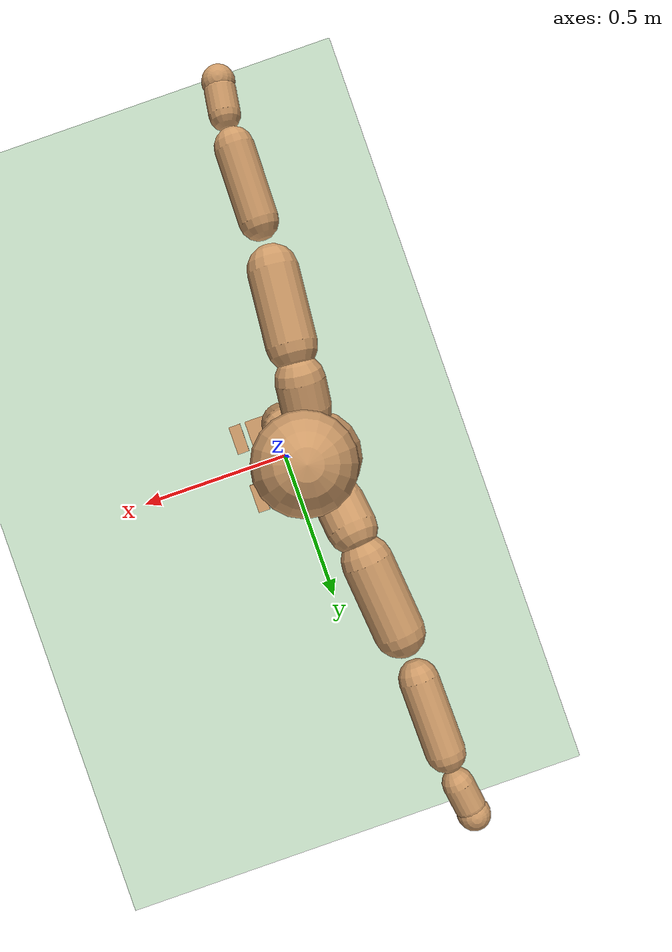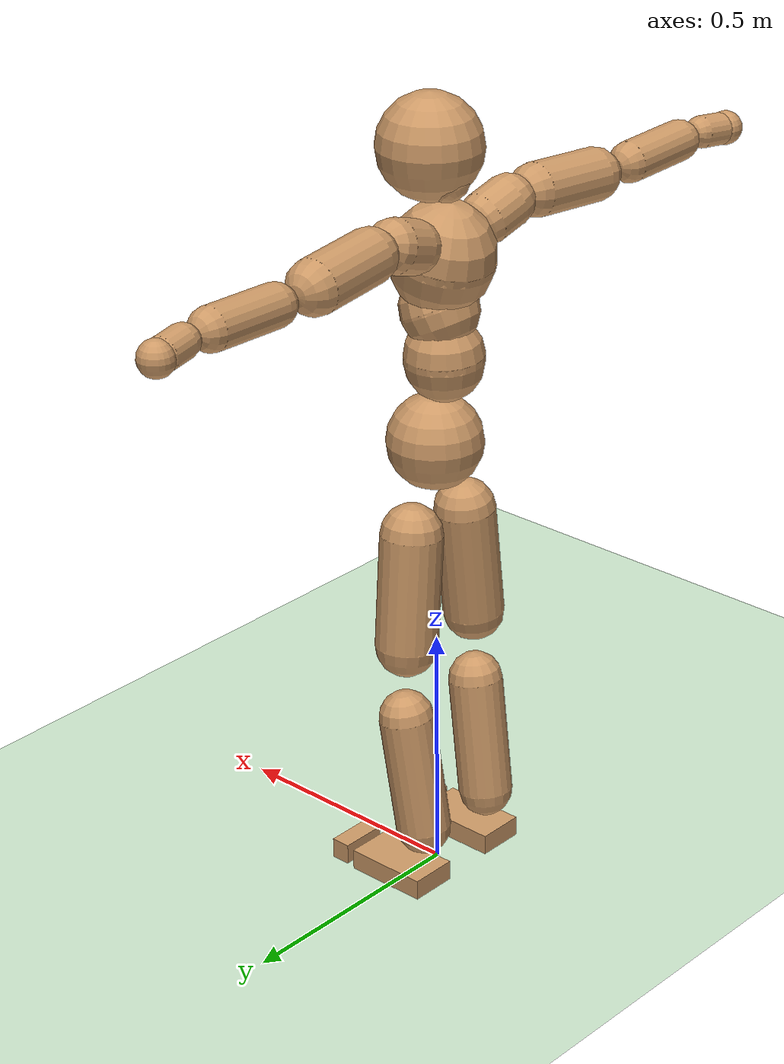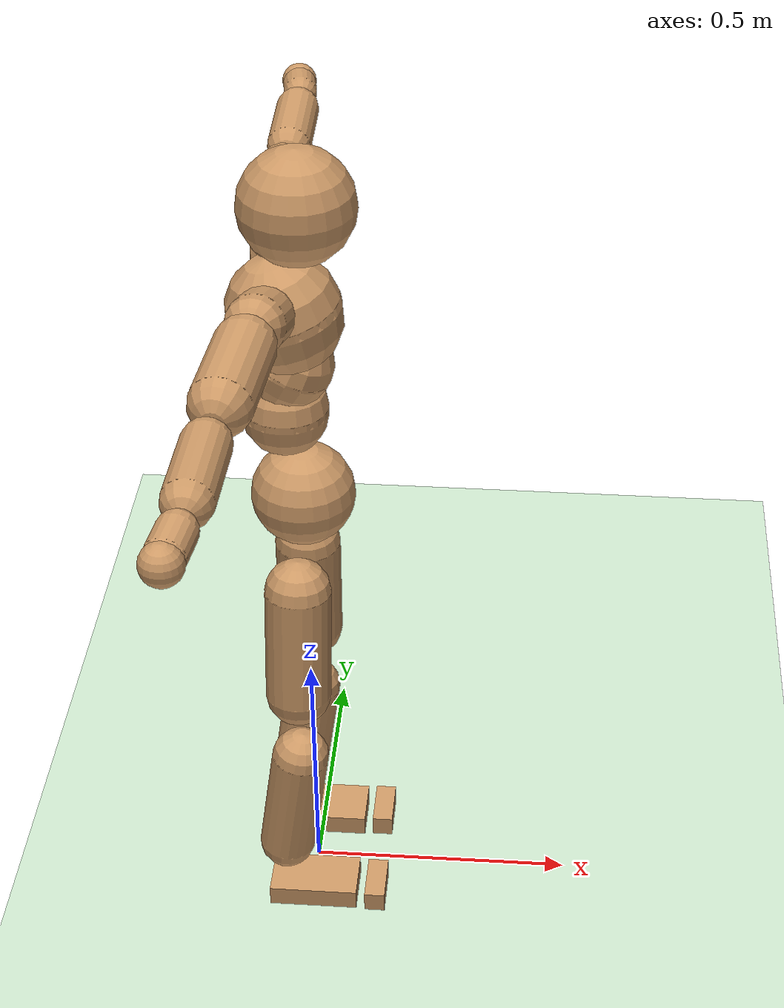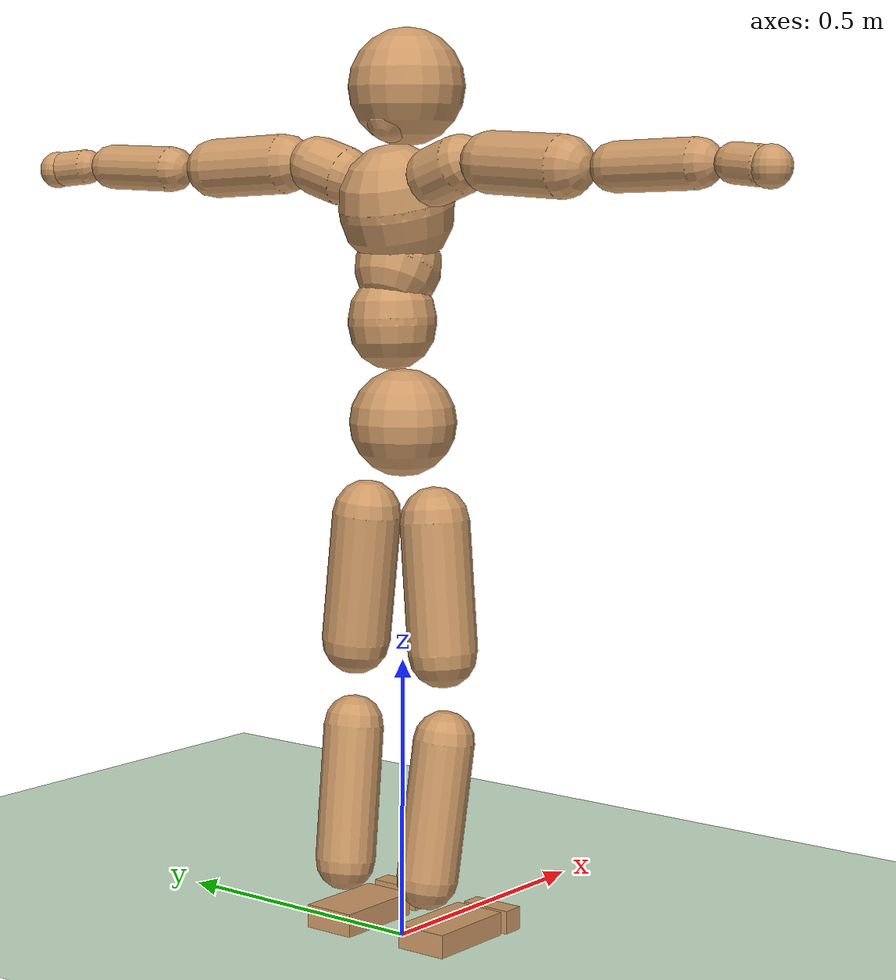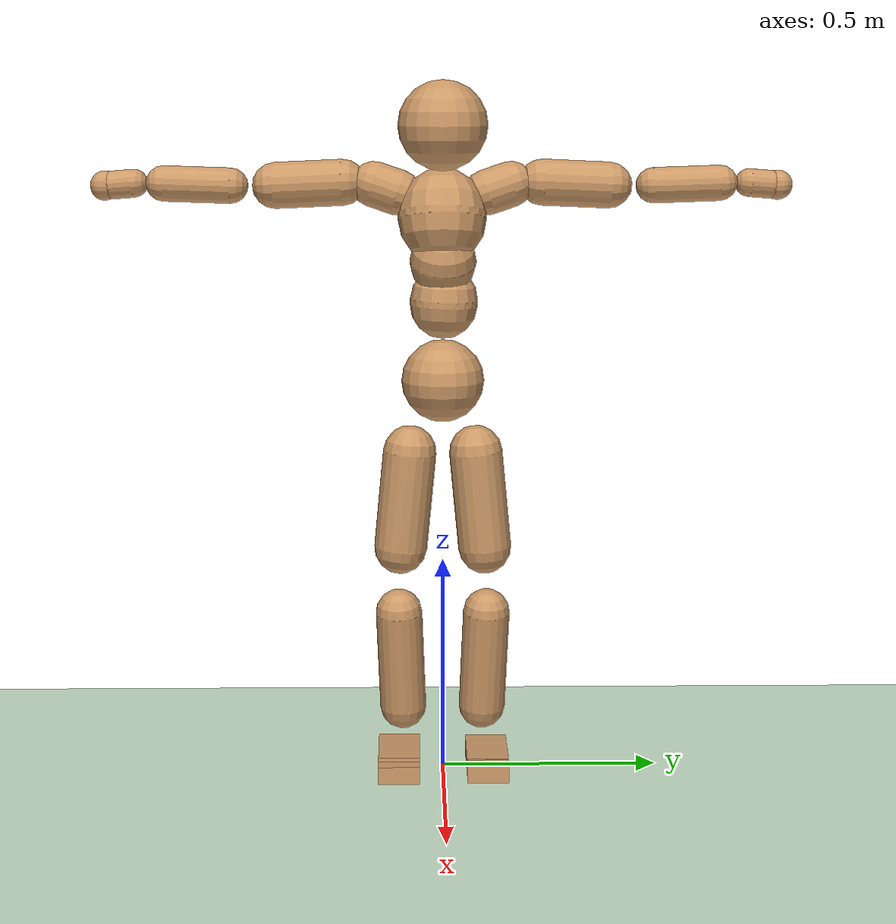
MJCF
<mujoco model="humanoid">
  <compiler coordinate="local" inertiafromgeom="true" angle="degree"/>
  <statistic extent="2" center="0 0 1"/>
  <option timestep="0.003"/>

  <custom>
        <!-- brax custom params -->
        <numeric data="2500" name="constraint_limit_stiffness"/>
        <numeric data="27000" name="constraint_stiffness"/>
        <numeric data="30" name="constraint_ang_damping"/>
        <numeric data="80" name="constraint_vel_damping"/>
        <numeric data="-0.05" name="ang_damping"/>
        <numeric data="0.5" name="joint_scale_pos"/>
        <numeric data="0.1" name="joint_scale_ang"/>
        <numeric data="0" name="spring_mass_scale"/>
        <numeric data="1" name="spring_inertia_scale"/>
        <numeric data="20" name="matrix_inv_iterations"/>
        <numeric data="15" name="solver_maxls"/>
    </custom>

  <default>
    <motor ctrlrange="-.4 .4" ctrllimited="true"/>
    <geom condim="3" material="geom" friction="1.0 0.05 0.05" solimp=".9 .99 .003" solref=".02 1" density="1500"/>
    <joint type="hinge" damping="6" stiffness="10" armature=".007" limited="true" solimplimit="0 .99 .01"/>
    <site size=".04" group="3"/>
    <default class="force-torque">
      <site type="box" size=".01 .01 .02" rgba="1 0 0 1"/>
    </default>
    <default class="touch">
      <site type="capsule" rgba="0 0 1 .3"/>
    </default>
  </default>
  <asset>
    <texture type="skybox" builtin="gradient" rgb1=".4 .5 .6" rgb2="0 0 0" width="100" height="100"/>
    <texture builtin="flat" height="1278" mark="cross" markrgb="1 1 1" name="texgeom" random="0.01" rgb1="0.8 0.6 0.4" rgb2="0.8 0.6 0.4" type="cube" width="127"/>
    <texture builtin="checker" height="100" name="texplane" rgb1="0 0 0" rgb2="0.8 0.8 0.8" type="2d" width="100"/>
    <material name="MatPlane" reflectance="0.5" shininess="1" specular="1" texrepeat="60 60" texture="texplane"/>
    <material name="geom" texture="texgeom" texuniform="true"/>
  </asset>
  <worldbody>
    <light cutoff="100" diffuse="1 1 1" dir="0 0 -0.1" directional="true" exponent="1" pos="0 0 10" specular=".1 .1 .1"/>
    <geom conaffinity="1" condim="3" name="floor" pos="0 0 0" rgba="0.8 0.9 0.8 1" size="100 100 .2" type="plane" material="MatPlane"/>

    <body name="Pelvis" pos="0 0 0.9205">

      <freejoint name="Pelvis"/>

      <geom type="sphere" size="0.0942" pos="0.0000 0.0000 0.0000"/>

      <body name="L_Hip" pos="-0.00555 0.0686 -0.09095">

        <joint name="L_Hip_z_transl" solreflimit="0.02 1" solimplimit="0.95 0.99 0.1" type="slide" pos="0 0 0" axis="0 0 1" range="-1 1" stiffness="0" damping="0" limited="true"/>

        <joint name="L_Hip_x" type="hinge" pos="0 0 0" axis="1 0 0" armature="0.02" range="-90.0000 90.0000" stiffness="100"/>
        <joint name="L_Hip_y" type="hinge" pos="0 0 0" axis="0 1 0" armature="0.02" range="-90.0000 90.0000" stiffness="100"/>
        <joint name="L_Hip_z" type="hinge" pos="0 0 0" axis="0 0 1" armature="0.02" range="-90.0000 90.0000" stiffness="100"/>

        <geom type="capsule" fromto="-0.00135 0.0073 -0.07575 -0.00535 0.029 -0.30315" size="0.06105"/>

        <body name="L_Knee" pos="-0.0067 0.0363 -0.3789">

          <joint name="L_Knee_z_transl" solreflimit="0.02 1" solimplimit="0.95 0.99 0.1" type="slide" pos="0 0 0" axis="0 0 1" range="-1 1" stiffness="0" damping="0" limited="true"/>

          <joint name="L_Knee_x" type="hinge" pos="0 0 0" axis="1 0 0" armature="0.02" range="-5.6250 5.6250" stiffness="10"/>
          <joint name="L_Knee_y" type="hinge" pos="0 0 0" axis="0 1 0" armature="0.02" range="0.0000 180.0000" stiffness="10"/>
          <joint name="L_Knee_z" type="hinge" pos="0 0 0" axis="0 0 1" armature="0.02" range="-5.6250 5.6250" stiffness="10"/>

          <geom type="capsule" fromto="0.0001 -0.00295 -0.07965 -0.0344 -0.01175 -0.31855" size="0.0541"/>

          <body name="L_Ankle" pos="-0.043 -0.0147 -0.3982">

            <joint name="L_Ankle_z_transl" solreflimit="0.02 1" solimplimit="0.95 0.99 0.1" type="slide" pos="0 0 0" axis="0 0 1" range="-1 1" stiffness="0" damping="0" limited="true"/>

            <joint name="L_Ankle_x" type="hinge" pos="0 0 0" axis="1 0 0" armature="0.02" range="-45.0000 45.0000" stiffness="10"/>
            <joint name="L_Ankle_y" type="hinge" pos="0 0 0" axis="0 1 0" armature="0.02" range="-90.0000 90.0000" stiffness="10"/>
            <joint name="L_Ankle_z" type="hinge" pos="0 0 0" axis="0 0 1" armature="0.02" range="-45.0000 45.0000" stiffness="10"/>

            <geom type="box" pos="0.0596 0.0132 -0.0279" size="0.08575 0.0483 0.0208" quat="1.0000 0.0000 0.0000 0.0000"/>

            <body name="L_Toe" pos="0.1213 0.0259 -0.05195">

              <joint name="L_Toe_x_transl" solreflimit="0.02 1" solimplimit="0.95 0.99 0.1" type="slide" pos="0 0 0" axis="1 0 0" range="-1 1" stiffness="0" damping="0" limited="true"/>

              <joint name="L_Toe_x" type="hinge" pos="0 0 0" axis="1 0 0" armature="0.02" range="-180.0000 180.0000" stiffness="100"/>
              <joint name="L_Toe_y" type="hinge" pos="0 0 0" axis="0 1 0" armature="0.02" range="-180.0000 180.0000" stiffness="100"/>
              <joint name="L_Toe_z" type="hinge" pos="0 0 0" axis="0 0 1" armature="0.02" range="-180.0000 180.0000" stiffness="100"/>

              <geom type="box" pos="0.0606 -0.0132 0.0270" size="0.01985 0.04785 0.0208" quat="1.0000 0.0000 0.0000 0.0000"/>
            </body>
          </body>
        </body>
      </body>
      <body name="R_Hip" pos="-0.00555 -0.0686 -0.09095">

        <joint name="R_Hip_z_transl" solreflimit="0.02 1" solimplimit="0.95 0.99 0.1" type="slide" pos="0 0 0" axis="0 0 1" range="-1 1" stiffness="0" damping="0" limited="true"/>

        <joint name="R_Hip_x" type="hinge" pos="0 0 0" axis="1 0 0" armature="0.02" range="-90.0000 90.0000" stiffness="100"/>
        <joint name="R_Hip_y" type="hinge" pos="0 0 0" axis="0 1 0" armature="0.02" range="-90.0000 90.0000" stiffness="100"/>
        <joint name="R_Hip_z" type="hinge" pos="0 0 0" axis="0 0 1" armature="0.02" range="-90.0000 90.0000" stiffness="100"/>

        <geom type="capsule" fromto="-0.00135 -0.0073 -0.07575 -0.00535 -0.029 -0.30315" size="0.06105"/>

        <body name="R_Knee" pos="-0.0067 -0.0363 -0.3789">

          <joint name="R_Knee_z_transl" solreflimit="0.02 1" solimplimit="0.95 0.99 0.1" type="slide" pos="0 0 0" axis="0 0 1" range="-1 1" stiffness="0" damping="0" limited="true"/>

          <joint name="R_Knee_x" type="hinge" pos="0 0 0" axis="1 0 0" armature="0.02" range="-5.6250 5.6250" stiffness="10"/>
          <joint name="R_Knee_y" type="hinge" pos="0 0 0" axis="0 1 0" armature="0.02" range="0.0000 180.0000" stiffness="10"/>
          <joint name="R_Knee_z" type="hinge" pos="0 0 0" axis="0 0 1" armature="0.02" range="-5.6250 5.6250" stiffness="10"/>

          <geom type="capsule" fromto="0.0001 0.00295 -0.07965 -0.0344 0.01175 -0.31855" size="0.0541"/>

          <body name="R_Ankle" pos="-0.043 0.0147 -0.3982">

            <joint name="R_Ankle_z_transl" solreflimit="0.02 1" solimplimit="0.95 0.99 0.1" type="slide" pos="0 0 0" axis="0 0 1" range="-1 1" stiffness="0" damping="0" limited="true"/>

            <joint name="R_Ankle_x" type="hinge" pos="0 0 0" axis="1 0 0" armature="0.02" range="-45.0000 45.0000" stiffness="10"/>
            <joint name="R_Ankle_y" type="hinge" pos="0 0 0" axis="0 1 0" armature="0.02" range="-90.0000 90.0000" stiffness="10"/>
            <joint name="R_Ankle_z" type="hinge" pos="0 0 0" axis="0 0 1" armature="0.02" range="-45.0000 45.0000" stiffness="10"/>

            <geom type="box" pos="0.0617 -0.0127 -0.0241" size="0.08575 0.0483 0.0208" quat="1.0000 0.0000 0.0000 0.0000"/>

            <body name="R_Toe" pos="0.1213 -0.0259 -0.05195">

              <joint name="R_Toe_x_transl" solreflimit="0.02 1" solimplimit="0.95 0.99 0.1" type="slide" pos="0 0 0" axis="1 0 0" range="-1 1" stiffness="0" damping="0" limited="true"/>

              <joint name="R_Toe_x" type="hinge" pos="0 0 0" axis="1 0 0" armature="0.02" range="-180.0000 180.0000" stiffness="100"/>
              <joint name="R_Toe_y" type="hinge" pos="0 0 0" axis="0 1 0" armature="0.02" range="-180.0000 180.0000" stiffness="100"/>
              <joint name="R_Toe_z" type="hinge" pos="0 0 0" axis="0 0 1" armature="0.02" range="-180.0000 180.0000" stiffness="100"/>

              <geom type="box" pos="0.0627 0.0127 0.0249" size="0.01985 0.04785 0.0208" quat="1.0000 0.0000 0.0000 0.0000"/>
            </body>
          </body>
        </body>
      </body>
      <body name="Torso" pos="-0.0267 0.0 0.109">

        <camera name="track" mode="trackcom" pos="0 -4 0" xyaxes="1 0 0 0 0 1"/>

        <joint name="Torso_z_transl" solreflimit="0.02 1" solimplimit="0.95 0.99 0.1" type="slide" pos="0 0 0" axis="0 0 1" range="-1 1" stiffness="0" damping="0" limited="true"/>

        <joint name="Torso_x" type="hinge" pos="0 0 0" axis="1 0 0" armature="0.02" range="-60.0000 60.0000" damping="10" stiffness="500"/>
        <joint name="Torso_y" type="hinge" pos="0 0 0" axis="0 1 0" armature="0.02" range="-60.0000 60.0000" damping="10" stiffness="500"/>
        <joint name="Torso_z" type="hinge" pos="0 0 0" axis="0 0 1" armature="0.02" range="-60.0000 60.0000" damping="10" stiffness="500"/>

        <geom type="capsule" fromto="0.0005 0.0025 0.0608 0.0006 0.003 0.0743" size="0.0769"/>

        <body name="Spine" pos="0.0011 0.0 0.1352">

          <joint name="Spine_z_transl" solreflimit="0.02 1" solimplimit="0.95 0.99 0.1" type="slide" pos="0 0 0" axis="0 0 1" range="-1 1" stiffness="0" damping="0" limited="true"/>

          <joint name="Spine_x" type="hinge" pos="0 0 0" axis="1 0 0" armature="0.02" range="-60.0000 60.0000" stiffness="100"/>
          <joint name="Spine_y" type="hinge" pos="0 0 0" axis="0 1 0" armature="0.02" range="-60.0000 60.0000" stiffness="100"/>
          <joint name="Spine_z" type="hinge" pos="0 0 0" axis="0 0 1" armature="0.02" range="-60.0000 60.0000" stiffness="100"/>

          <geom type="capsule" fromto="0.0114 0.0007 0.0238 0.014 0.0008 0.0291" size="0.0755"/>

          <body name="Chest" pos="0.0254 0.0 0.0529">

            <joint name="Chest_z_transl" solreflimit="0.02 1" solimplimit="0.95 0.99 0.1" type="slide" pos="0 0 0" axis="0 0 1" range="-1 1" stiffness="0" damping="0" limited="true"/>

            <joint name="Chest_x" type="hinge" pos="0 0 0" axis="1 0 0" armature="0.02" range="-60.0000 60.0000" stiffness="100"/>
            <joint name="Chest_y" type="hinge" pos="0 0 0" axis="0 1 0" armature="0.02" range="-60.0000 60.0000" stiffness="100"/>
            <joint name="Chest_z" type="hinge" pos="0 0 0" axis="0 0 1" armature="0.02" range="-60.0000 60.0000" stiffness="100"/>

            <geom type="capsule" fromto="-0.0173 -0.0009 0.0682 -0.0212 -0.001 0.0833" size="0.1002"/>

            <body name="Neck" pos="-0.0429 0.0 0.2139">

              <joint name="Neck_z_transl" solreflimit="0.02 1" solimplimit="0.95 0.99 0.1" type="slide" pos="0 0 0" axis="0 0 1" range="-1 1" stiffness="0" damping="0" limited="true"/>

              <joint name="Neck_x" type="hinge" pos="0 0 0" axis="1 0 0" armature="0.02" range="-5.6250 5.6250" stiffness="10"/>
              <joint name="Neck_y" type="hinge" pos="0 0 0" axis="0 1 0" armature="0.02" range="-90.0000 90.0000" stiffness="10"/>
              <joint name="Neck_z" type="hinge" pos="0 0 0" axis="0 0 1" armature="0.02" range="-90.0000 90.0000" stiffness="10"/>

              <geom type="capsule" fromto="0.0103 0.001 0.013 0.0411 0.0041 0.052" size="0.0436"/>

              <body name="Head" pos="0.0513 0.0 0.065">

                <joint name="Head_z_transl" solreflimit="0.02 1" solimplimit="0.95 0.99 0.1" type="slide" pos="0 0 0" axis="0 0 1" range="-1 1" stiffness="0" damping="0" limited="true"/>

                <joint name="Head_x" type="hinge" pos="0 0 0" axis="1 0 0" armature="0.02" range="-5.6250 5.6250" stiffness="10"/>
                <joint name="Head_y" type="hinge" pos="0 0 0" axis="0 1 0" armature="0.02" range="-90.0000 90.0000" stiffness="10"/>
                <joint name="Head_z" type="hinge" pos="0 0 0" axis="0 0 1" armature="0.02" range="-90.0000 90.0000" stiffness="10"/>

                <geom type="sphere" size="0.1011" pos="0.0000 0.0000 0.0000"/>
              </body>
            </body>

            <body name="L_Thorax" pos="-0.03635 0.0803 0.12025">

              <joint name="L_Thorax_y_transl" solreflimit="0.02 1" solimplimit="0.95 0.99 0.1" type="slide" pos="0 0 0" axis="0 1 0" range="-1 1" stiffness="0" damping="0" limited="true"/>

              <joint name="L_Thorax_x" type="hinge" pos="0 0 0" axis="1 0 0" armature="0.02" range="-5.6250 5.6250" stiffness="100"/>
              <joint name="L_Thorax_y" type="hinge" pos="0 0 0" axis="0 1 0" armature="0.02" range="-5.6250 5.6250" stiffness="100"/>
              <joint name="L_Thorax_z" type="hinge" pos="0 0 0" axis="0 0 1" armature="0.02" range="-5.6250 5.6250" stiffness="100"/>

              <geom type="capsule" fromto="-0.0018 0.0187 0.0063 -0.0072 0.0748 0.0252" size="0.0516"/>

              <body name="L_Shoulder" pos="-0.009 0.0935 0.03155">

                <joint name="L_Shoulder_y_transl" solreflimit="0.02 1" solimplimit="0.95 0.99 0.1" type="slide" pos="0 0 0" axis="0 1 0" range="-1 1" stiffness="0" damping="0" limited="true"/>

                <joint name="L_Shoulder_x" type="hinge" pos="0 0 0" axis="1 0 0" armature="0.02" range="-720.0000 720.0000" stiffness="10"/>
                <joint name="L_Shoulder_y" type="hinge" pos="0 0 0" axis="0 1 0" armature="0.02" range="-720.0000 720.0000" stiffness="10"/>
                <joint name="L_Shoulder_z" type="hinge" pos="0 0 0" axis="0 0 1" armature="0.02" range="-720.0000 720.0000" stiffness="10"/>

                <geom type="capsule" fromto="-0.0049 0.0513 -0.00265 -0.01955 0.20535 -0.01045" size="0.0524"/>

                <body name="L_Elbow" pos="-0.02445 0.25665 -0.01305">

                  <joint name="L_Elbow_y_transl" solreflimit="0.02 1" solimplimit="0.95 0.99 0.1" type="slide" pos="0 0 0" axis="0 1 0" range="-1 1" stiffness="0" damping="0" limited="true"/>

                  <joint name="L_Elbow_x" type="hinge" pos="0 0 0" axis="1 0 0" armature="0.02" range="-5.6250 5.6250" stiffness="10"/>
                  <joint name="L_Elbow_y" type="hinge" pos="0 0 0" axis="0 1 0" armature="0.02" range="-5.6250 5.6250" stiffness="10"/>
                  <joint name="L_Elbow_z" type="hinge" pos="0 0 0" axis="0 0 1" armature="0.02" range="-180.0000 0.0000" stiffness="10"/>

                  <geom type="capsule" fromto="-0.00065 0.05045 0.0017 -0.00265 0.2018 0.0067" size="0.04065"/>

                  <body name="L_Wrist" pos="-0.0034 0.25225 0.0084">

                    <joint name="L_Wrist_y_transl" solreflimit="0.02 1" solimplimit="0.95 0.99 0.1" type="slide" pos="0 0 0" axis="0 1 0" range="-1 1" stiffness="0" damping="0" limited="true"/>

                    <joint name="L_Wrist_x" type="hinge" pos="0 0 0" axis="1 0 0" armature="0.02" range="-180.0000 180.0000" stiffness="10"/>
                    <joint name="L_Wrist_y" type="hinge" pos="0 0 0" axis="0 1 0" armature="0.02" range="-180.0000 180.0000" stiffness="10"/>
                    <joint name="L_Wrist_z" type="hinge" pos="0 0 0" axis="0 0 1" armature="0.02" range="-180.0000 180.0000" stiffness="10"/>

                    <geom type="capsule" fromto="-0.00255 0.01685 -0.0014 -0.01015 0.06745 -0.0057" size="0.0322"/>

                    <body name="L_Hand" pos="-0.0126 0.0843 -0.00715">

                      <joint name="L_Hand_y_transl" solreflimit="0.02 1" solimplimit="0.95 0.99 0.1" type="slide" pos="0 0 0" axis="0 1 0" range="-1 1" stiffness="0" damping="0" limited="true"/>

                      <joint name="L_Hand_x" type="hinge" pos="0 0 0" axis="1 0 0" armature="0.02" range="-180.0000 180.0000" stiffness="10"/>
                      <joint name="L_Hand_y" type="hinge" pos="0 0 0" axis="0 1 0" armature="0.02" range="-180.0000 180.0000" stiffness="10"/>
                      <joint name="L_Hand_z" type="hinge" pos="0 0 0" axis="0 0 1" armature="0.02" range="-180.0000 180.0000" stiffness="10"/>
                      <geom type="sphere" size="0.03385" pos="0.0000 0.0000 0.0000"/>
                    </body>
                  </body>
                </body>
              </body>
            </body>

            <body name="R_Thorax" pos="-0.03635 -0.0803 0.12025">

              <joint name="R_Thorax_y_transl" solreflimit="0.02 1" solimplimit="0.95 0.99 0.1" type="slide" pos="0 0 0" axis="0 1 0" range="-1 1" stiffness="0" damping="0" limited="true"/>

              <joint name="R_Thorax_x" type="hinge" pos="0 0 0" axis="1 0 0" armature="0.02" range="-5.6250 5.6250" stiffness="100"/>
              <joint name="R_Thorax_y" type="hinge" pos="0 0 0" axis="0 1 0" armature="0.02" range="-5.6250 5.6250" stiffness="100"/>
              <joint name="R_Thorax_z" type="hinge" pos="0 0 0" axis="0 0 1" armature="0.02" range="-5.6250 5.6250" stiffness="100"/>

              <geom type="capsule" fromto="-0.0018 -0.0187 0.0063 -0.0072 -0.0748 0.0252" size="0.0516"/>

              <body name="R_Shoulder" pos="-0.009 -0.0935 0.03155">

                <joint name="R_Shoulder_y_transl" solreflimit="0.02 1" solimplimit="0.95 0.99 0.1" type="slide" pos="0 0 0" axis="0 1 0" range="-1 1" stiffness="0" damping="0" limited="true"/>

                <joint name="R_Shoulder_x" type="hinge" pos="0 0 0" axis="1 0 0" armature="0.02" range="-720.0000 720.0000" stiffness="10"/>
                <joint name="R_Shoulder_y" type="hinge" pos="0 0 0" axis="0 1 0" armature="0.02" range="-720.0000 720.0000" stiffness="10"/>
                <joint name="R_Shoulder_z" type="hinge" pos="0 0 0" axis="0 0 1" armature="0.02" range="-720.0000 720.0000" stiffness="10"/>

                <geom type="capsule" fromto="-0.0049 -0.0513 -0.00265 -0.01955 -0.20535 -0.01045" size="0.0524"/>

                <body name="R_Elbow" pos="-0.02445 -0.25665 -0.01305">

                  <joint name="R_Elbow_y_transl" solreflimit="0.02 1" solimplimit="0.95 0.99 0.1" type="slide" pos="0 0 0" axis="0 1 0" range="-1 1" stiffness="0" damping="0" limited="true"/>

                  <joint name="R_Elbow_x" type="hinge" pos="0 0 0" axis="1 0 0" armature="0.02" range="-5.6250 5.6250" stiffness="10"/>
                  <joint name="R_Elbow_y" type="hinge" pos="0 0 0" axis="0 1 0" armature="0.02" range="-5.6250 5.6250" stiffness="10"/>
                  <joint name="R_Elbow_z" type="hinge" pos="0 0 0" axis="0 0 1" armature="0.02" range="0.0000 180.0000" stiffness="10"/>

                  <geom type="capsule" fromto="-0.00065 -0.05045 0.0017 -0.00265 -0.2018 0.0067" size="0.04065"/>

                  <body name="R_Wrist" pos="-0.0034 -0.25225 0.0084">

                    <joint name="R_Wrist_y_transl" solreflimit="0.02 1" solimplimit="0.95 0.99 0.1" type="slide" pos="0 0 0" axis="0 1 0" range="-1 1" stiffness="0" damping="0" limited="true"/>

                    <joint name="R_Wrist_x" type="hinge" pos="0 0 0" axis="1 0 0" armature="0.02" range="-180.0000 180.0000" stiffness="10"/>
                    <joint name="R_Wrist_y" type="hinge" pos="0 0 0" axis="0 1 0" armature="0.02" range="-180.0000 180.0000" stiffness="10"/>
                    <joint name="R_Wrist_z" type="hinge" pos="0 0 0" axis="0 0 1" armature="0.02" range="-180.0000 180.0000" stiffness="10"/>

                    <geom type="capsule" fromto="-0.00255 -0.01685 -0.0014 -0.01015 -0.06745 -0.0057" size="0.0322"/>

                    <body name="R_Hand" pos="-0.0126 -0.0843 -0.00715">

                      <joint name="R_Hand_y_transl" solreflimit="0.02 1" solimplimit="0.95 0.99 0.1" type="slide" pos="0 0 0" axis="0 1 0" range="-1 1" stiffness="0" damping="0" limited="true"/>

                      <joint name="R_Hand_x" type="hinge" pos="0 0 0" axis="1 0 0" armature="0.02" range="-180.0000 180.0000" stiffness="10"/>
                      <joint name="R_Hand_y" type="hinge" pos="0 0 0" axis="0 1 0" armature="0.02" range="-180.0000 180.0000" stiffness="10"/>
                      <joint name="R_Hand_z" type="hinge" pos="0 0 0" axis="0 0 1" armature="0.02" range="-180.0000 180.0000" stiffness="10"/>
                      <geom type="sphere" size="0.03385" pos="0.0000 0.0000 0.0000"/>
                    </body>
                  </body>
                </body>
              </body>
            </body>
          </body>
        </body>
      </body>
    </body>
  </worldbody>
  <actuator>
    <motor name="L_Hip_x" joint="L_Hip_x" gear="100"/>
    <motor name="L_Hip_y" joint="L_Hip_y" gear="300"/>
    <motor name="L_Hip_z" joint="L_Hip_z" gear="100"/>
    <motor name="L_Knee_x" joint="L_Knee_x" gear="75"/>
    <motor name="L_Knee_y" joint="L_Knee_y" gear="100"/>
    <motor name="L_Knee_z" joint="L_Knee_z" gear="50"/>
    <motor name="L_Ankle_x" joint="L_Ankle_x" gear="75"/>
    <motor name="L_Ankle_y" joint="L_Ankle_y" gear="100"/>
    <motor name="L_Ankle_z" joint="L_Ankle_z" gear="50"/>
    <motor name="L_Toe_x" joint="L_Toe_x" gear="25"/>
    <motor name="L_Toe_y" joint="L_Toe_y" gear="25"/>
    <motor name="L_Toe_z" joint="L_Toe_z" gear="25"/>
    <motor name="R_Hip_x" joint="R_Hip_x" gear="100"/>
    <motor name="R_Hip_y" joint="R_Hip_y" gear="300"/>
    <motor name="R_Hip_z" joint="R_Hip_z" gear="100"/>
    <motor name="R_Knee_x" joint="R_Knee_x" gear="75"/>
    <motor name="R_Knee_y" joint="R_Knee_y" gear="100"/>
    <motor name="R_Knee_z" joint="R_Knee_z" gear="50"/>
    <motor name="R_Ankle_x" joint="R_Ankle_x" gear="75"/>
    <motor name="R_Ankle_y" joint="R_Ankle_y" gear="100"/>
    <motor name="R_Ankle_z" joint="R_Ankle_z" gear="50"/>
    <motor name="R_Toe_x" joint="R_Toe_x" gear="25"/>
    <motor name="R_Toe_y" joint="R_Toe_y" gear="25"/>
    <motor name="R_Toe_z" joint="R_Toe_z" gear="25"/>
    <motor name="Torso_x" joint="Torso_x" gear="100"/>
    <motor name="Torso_y" joint="Torso_y" gear="50"/>
    <motor name="Torso_z" joint="Torso_z" gear="100"/>
    <motor name="Spine_x" joint="Spine_x" gear="100"/>
    <motor name="Spine_y" joint="Spine_y" gear="50"/>
    <motor name="Spine_z" joint="Spine_z" gear="100"/>
    <motor name="Chest_x" joint="Chest_x" gear="25"/>
    <motor name="Chest_y" joint="Chest_y" gear="25"/>
    <motor name="Chest_z" joint="Chest_z" gear="25"/>
    <motor name="Neck_x" joint="Neck_x" gear="50"/>
    <motor name="Neck_y" joint="Neck_y" gear="50"/>
    <motor name="Neck_z" joint="Neck_z" gear="50"/>
    <motor name="Head_x" joint="Head_x" gear="50"/>
    <motor name="Head_y" joint="Head_y" gear="50"/>
    <motor name="Head_z" joint="Head_z" gear="50"/>
    <motor name="L_Thorax_x" joint="L_Thorax_x" gear="100"/>
    <motor name="L_Thorax_y" joint="L_Thorax_y" gear="100"/>
    <motor name="L_Thorax_z" joint="L_Thorax_z" gear="100"/>
    <motor name="L_Shoulder_x" joint="L_Shoulder_x" gear="100"/>
    <motor name="L_Shoulder_y" joint="L_Shoulder_y" gear="100"/>
    <motor name="L_Shoulder_z" joint="L_Shoulder_z" gear="50"/>
    <motor name="L_Elbow_x" joint="L_Elbow_x" gear="25"/>
    <motor name="L_Elbow_y" joint="L_Elbow_y" gear="50"/>
    <motor name="L_Elbow_z" joint="L_Elbow_z" gear="25"/>
    <motor name="L_Wrist_x" joint="L_Wrist_x" gear="12"/>
    <motor name="L_Wrist_y" joint="L_Wrist_y" gear="12"/>
    <motor name="L_Wrist_z" joint="L_Wrist_z" gear="12"/>
    <motor name="L_Hand_x" joint="L_Hand_x" gear="10"/>
    <motor name="L_Hand_y" joint="L_Hand_y" gear="10"/>
    <motor name="L_Hand_z" joint="L_Hand_z" gear="10"/>
    <motor name="R_Thorax_x" joint="R_Thorax_x" gear="100"/>
    <motor name="R_Thorax_y" joint="R_Thorax_y" gear="100"/>
    <motor name="R_Thorax_z" joint="R_Thorax_z" gear="100"/>
    <motor name="R_Shoulder_x" joint="R_Shoulder_x" gear="100"/>
    <motor name="R_Shoulder_y" joint="R_Shoulder_y" gear="100"/>
    <motor name="R_Shoulder_z" joint="R_Shoulder_z" gear="50"/>
    <motor name="R_Elbow_x" joint="R_Elbow_x" gear="25"/>
    <motor name="R_Elbow_y" joint="R_Elbow_y" gear="50"/>
    <motor name="R_Elbow_z" joint="R_Elbow_z" gear="25"/>
    <motor name="R_Wrist_x" joint="R_Wrist_x" gear="12"/>
    <motor name="R_Wrist_y" joint="R_Wrist_y" gear="12"/>
    <motor name="R_Wrist_z" joint="R_Wrist_z" gear="12"/>
    <motor name="R_Hand_x" joint="R_Hand_x" gear="10"/>
    <motor name="R_Hand_y" joint="R_Hand_y" gear="10"/>
    <motor name="R_Hand_z" joint="R_Hand_z" gear="10"/>

  </actuator>
  <contact/>
  <size njmax="700" nconmax="700"/>
</mujoco>
